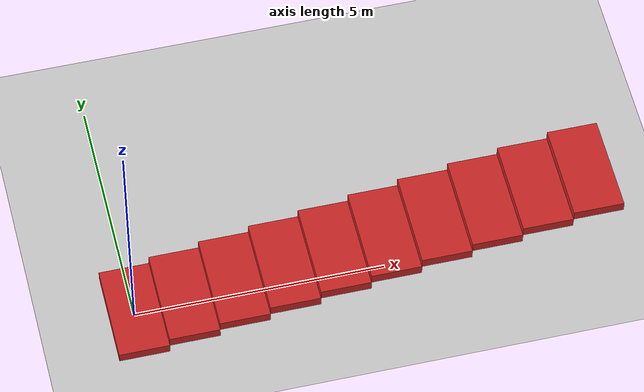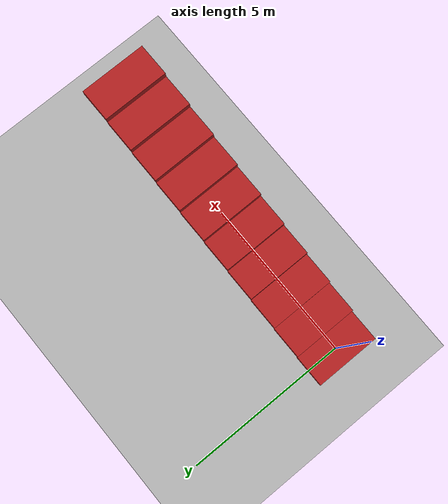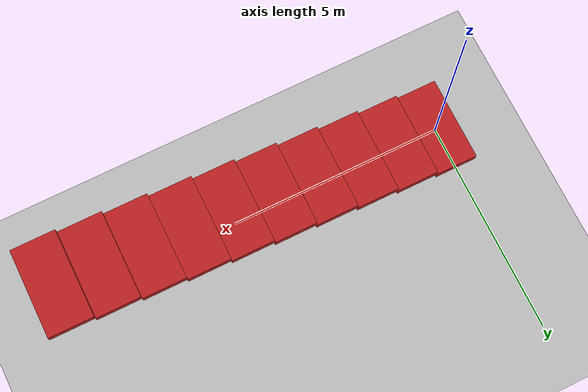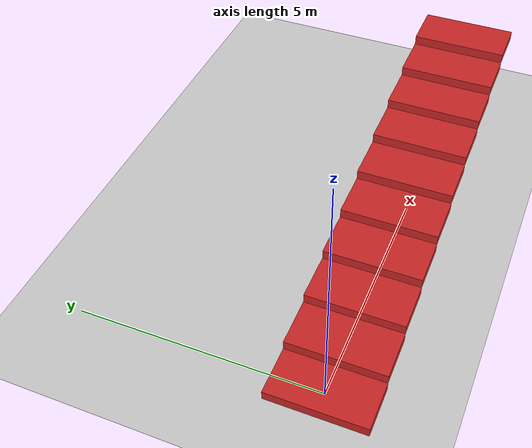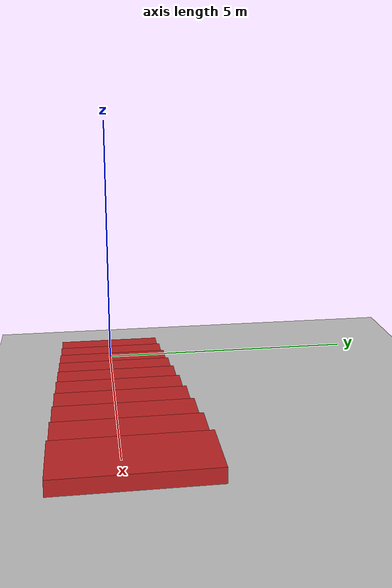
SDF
<?xml version="1.0" ?>
<sdf version="1.6">
  <world name="stair_test_world">
    <!-- Include the sun -->
    <include>
      <uri>model://sun</uri>
    </include>

    <!-- Include the ground plane -->
    <include>
      <uri>model://ground_plane</uri>
    </include>

    <!-- Add the staircase -->
    <model name="staircase">
      <static>true</static>
      <!-- Step 1 -->
      <link name="step_1">
        <collision name="collision">
          <geometry>
            <box>
              <size>1 2 0.2</size>
            </box>
          </geometry>
          <pose>0 0 0.1 0 0 0</pose>
        </collision>
        <visual name="visual">
          <geometry>
            <box>
              <size>1 2 0.2</size>
            </box>
          </geometry>
          <pose>0 0 0.1 0 0 0</pose>
          <material>
            <script>
              <uri>file://media/materials/scripts/gazebo.material</uri>
              <name>Gazebo/Red</name>
            </script>
          </material>
        </visual>
      </link>
      <!-- Step 2 -->
      <link name="step_2">
        <collision name="collision">
          <geometry>
            <box>
              <size>1 2 0.2</size>
            </box>
          </geometry>
          <pose>1 0 0.3 0 0 0</pose>
        </collision>
        <visual name="visual">
          <geometry>
            <box>
              <size>1 2 0.2</size>
            </box>
          </geometry>
          <pose>1 0 0.3 0 0 0</pose>
          <material>
            <script>
              <uri>file://media/materials/scripts/gazebo.material</uri>
              <name>Gazebo/Red</name>
            </script>
          </material>
        </visual>
      </link>
      <!-- Step 3 -->
      <link name="step_3">
        <collision name="collision">
          <geometry>
            <box>
              <size>1 2 0.2</size>
            </box>
          </geometry>
          <pose>2 0 0.5 0 0 0</pose>
        </collision>
        <visual name="visual">
          <geometry>
            <box>
              <size>1 2 0.2</size>
            </box>
          </geometry>
          <pose>2 0 0.5 0 0 0</pose>
          <material>
            <script>
              <uri>file://media/materials/scripts/gazebo.material</uri>
              <name>Gazebo/Red</name>
            </script>
          </material>
        </visual>
      </link>
      <!-- Step 4 -->
      <link name="step_4">
        <collision name="collision">
          <geometry>
            <box>
              <size>1 2 0.2</size>
            </box>
          </geometry>
          <pose>3 0 0.7 0 0 0</pose>
        </collision>
        <visual name="visual">
          <geometry>
            <box>
              <size>1 2 0.2</size>
            </box>
          </geometry>
          <pose>3 0 0.7 0 0 0</pose>
          <material>
            <script>
              <uri>file://media/materials/scripts/gazebo.material</uri>
              <name>Gazebo/Red</name>
            </script>
          </material>
        </visual>
      </link>
      <!-- Step 5 -->
      <link name="step_5">
        <collision name="collision">
          <geometry>
            <box>
              <size>1 2 0.2</size>
            </box>
          </geometry>
          <pose>4 0 0.9 0 0 0</pose>
        </collision>
        <visual name="visual">
          <geometry>
            <box>
              <size>1 2 0.2</size>
            </box>
          </geometry>
          <pose>4 0 0.9 0 0 0</pose>
          <material>
            <script>
              <uri>file://media/materials/scripts/gazebo.material</uri>
              <name>Gazebo/Red</name>
            </script>
          </material>
        </visual>
      </link>
      <!-- Step 6 -->
      <link name="step_6">
        <collision name="collision">
          <geometry>
            <box>
              <size>1 2 0.2</size>
            </box>
          </geometry>
          <pose>5 0 1.1 0 0 0</pose>
        </collision>
        <visual name="visual">
          <geometry>
            <box>
              <size>1 2 0.2</size>
            </box>
          </geometry>
          <pose>5 0 1.1 0 0 0</pose>
          <material>
            <script>
              <uri>file://media/materials/scripts/gazebo.material</uri>
              <name>Gazebo/Red</name>
            </script>
          </material>
        </visual>
      </link>
      <!-- Step 7 -->
      <link name="step_7">
        <collision name="collision">
          <geometry>
            <box>
              <size>1 2 0.2</size>
            </box>
          </geometry>
          <pose>6 0 1.3 0 0 0</pose>
        </collision>
        <visual name="visual">
          <geometry>
            <box>
              <size>1 2 0.2</size>
            </box>
          </geometry>
          <pose>6 0 1.3 0 0 0</pose>
          <material>
            <script>
              <uri>file://media/materials/scripts/gazebo.material</uri>
              <name>Gazebo/Red</name>
            </script>
          </material>
        </visual>
      </link>
      <!-- Step 8 -->
      <link name="step_8">
        <collision name="collision">
          <geometry>
            <box>
              <size>1 2 0.2</size>
            </box>
          </geometry>
          <pose>7 0 1.5 0 0 0</pose>
        </collision>
        <visual name="visual">
          <geometry>
            <box>
              <size>1 2 0.2</size>
            </box>
          </geometry>
          <pose>7 0 1.5 0 0 0</pose>
          <material>
            <script>
              <uri>file://media/materials/scripts/gazebo.material</uri>
              <name>Gazebo/Red</name>
            </script>
          </material>
        </visual>
      </link>
      <!-- Step 9 -->
      <link name="step_9">
        <collision name="collision">
          <geometry>
            <box>
              <size>1 2 0.2</size>
            </box>
          </geometry>
          <pose>8 0 1.7 0 0 0</pose>
        </collision>
        <visual name="visual">
          <geometry>
            <box>
              <size>1 2 0.2</size>
            </box>
          </geometry>
          <pose>8 0 1.7 0 0 0</pose>
          <material>
            <script>
              <uri>file://media/materials/scripts/gazebo.material</uri>
              <name>Gazebo/Red</name>
            </script>
          </material>
        </visual>
      </link>
      <!-- Step 10 -->
      <link name="step_10">
        <collision name="collision">
          <geometry>
            <box>
              <size>1 2 0.2</size>
            </box>
          </geometry>
          <pose>9 0 1.9 0 0 0</pose>
        </collision>
        <visual name="visual">
          <geometry>
            <box>
              <size>1 2 0.2</size>
            </box>
          </geometry>
          <pose>9 0 1.9 0 0 0</pose>
          <material>
            <script>
              <uri>file://media/materials/scripts/gazebo.material</uri>
              <name>Gazebo/Red</name>
            </script>
          </material>
        </visual>
      </link>
    </model>

    <!-- Physics -->
    <physics type="ode">
      <gravity>0 0 -9.8</gravity>
    </physics>

    <!-- Lighting -->
    <light name="directional_light" type="directional">
      <cast_shadows>true</cast_shadows>
      <pose>0 0 10 0 0 0</pose>
      <diffuse>0.8 0.8 0.8 1</diffuse>
      <specular>0.2 0.2 0.2 1</specular>
      <attenuation>
        <range>1000</range>
        <constant>0.9</constant>
        <linear>0.01</linear>
        <quadratic>0.001</quadratic>
      </attenuation>
      <direction>-0.5 0.5 -1</direction>
    </light>
  </world>
</sdf>
